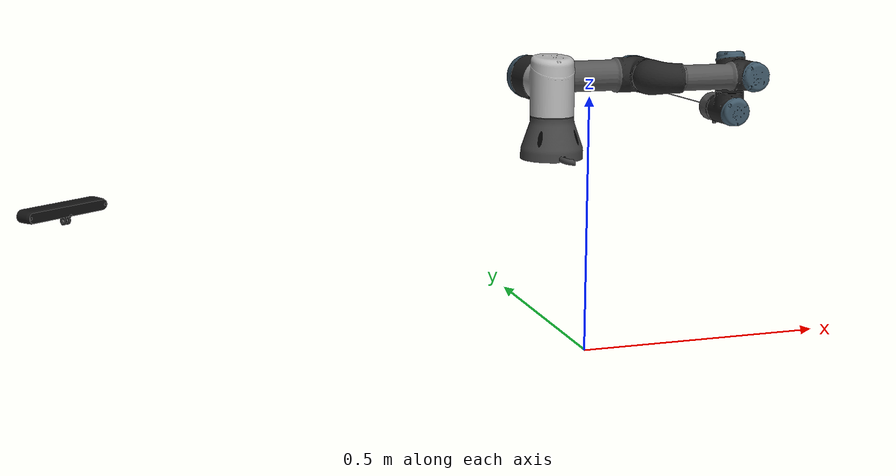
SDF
<sdf version='1.7'>
  <model name='ur'>
    <joint name='base_joint' type='fixed'>
      <pose relative_to='__model__'>0 0.2 0.35 0 -0 0</pose>
      <parent>world</parent>
      <child>base_link</child>
    </joint>
    <link name='base_link'>
      <pose relative_to='base_joint'>0 0 0 0 -0 0</pose>
      <inertial>
        <pose>-0.009895 -0.000926 -0.005219 0 -0 0</pose>
        <mass>2.2197</mass>
        <inertia>
          <ixx>0.00362099</ixx>
          <ixy>-0.00018523</ixy>
          <ixz>-0.0010435</ixz>
          <iyy>0.00558622</iyy>
          <iyz>-9.76754e-05</iyz>
          <izz>0.00762497</izz>
        </inertia>
      </inertial>
      <collision name='base_link_inertia_collision'>
        <pose>0 0 0 0 0 -0</pose>
        <geometry>
          <mesh>
            <scale>1 1 1</scale>
            <uri>file:///home/alex/tese_ws/install/ur_description/share/ur_description/meshes/ur3/collision/base.stl</uri>
          </mesh>
        </geometry>
      </collision>
      <collision name='base_link_fixed_joint_lump__camera_link_collision_1'>
        <pose>-0.97 0.2 -0.05 0 -0 2.2</pose>
        <geometry>
          <mesh>
            <scale>1 1 1</scale>
            <uri>file:///home/alex/tese_ws/install/sim/share/sim/meshes/kinetic.dae</uri>
          </mesh>
        </geometry>
        <surface>
          <contact>
            <ode/>
          </contact>
          <friction>
            <ode/>
          </friction>
        </surface>
      </collision>
      <visual name='base_link_inertia_visual'>
        <pose>0 0 0 0 0 -0</pose>
        <geometry>
          <mesh>
            <scale>1 1 1</scale>
            <uri>file:///home/alex/tese_ws/install/ur_description/share/ur_description/meshes/ur3/visual/base.dae</uri>
          </mesh>
        </geometry>
      </visual>
      <visual name='base_link_fixed_joint_lump__camera_link_visual_1'>
        <pose>-0.97 0.0 -0.05 0 -0 2.2</pose>
        <geometry>
          <mesh>
            <scale>1 1 1</scale>
            <uri>file:///home/alex/tese_ws/install/sim/share/sim/meshes/kinetic.stl</uri>
          </mesh>
        </geometry>
        <material>
	    <ambient>0.02 0.02 0.02 1</ambient>
	    <diffuse>0.08 0.08 0.08 1</diffuse>
	    <specular>0.1 0.1 0.1 1</specular>
	    <emissive>0 0 0 1</emissive>
	</material>

      </visual>
	<sensor name='rgbd_camera' type='rgbd_camera'>
	  <always_on>1</always_on>
	  <update_rate>30</update_rate>
	  <visualize>1</visualize>
	  <camera>
	    <horizontal_fov>0.6</horizontal_fov>  <!-- 55° - tighter FOV, better depth -->
	    <image>
	      <format>R8G8B8</format>
	      <width>1280</width>   <!-- RealSense D435 resolution -->
	      <height>720</height>
	    </image>
	    <clip>
	      <near>0.2</near>
	      <far>3.5</far>  <!-- Reduced - you don't need 8m -->
	    </clip>
	  </camera>
	   <pose>-0.97 0.0 -0.05 0 -0 2.2</pose>
	  <frame_name>camera_optical_link</frame_name>
	</sensor>
    </link>
    <joint name='shoulder_pan_joint' type='revolute'>
      <pose relative_to='base_link'>0 0 0.1519 0 -0 3.14159</pose>
      <parent>base_link</parent>
      <child>shoulder_link</child>
      <axis>
        <xyz>0 0 1</xyz>
        <limit>
          <lower>-6.28319</lower>
          <upper>6.28319</upper>
          <effort>56</effort>
          <velocity>3.14159</velocity>
        </limit>
        <dynamics>
          <damping>0</damping>
          <friction>0</friction>
          <spring_reference>0</spring_reference>
          <spring_stiffness>0</spring_stiffness>
        </dynamics>
      </axis>
    </joint>
    <link name='shoulder_link'>
      <pose relative_to='shoulder_pan_joint'>0 0 0 0 -0 0</pose>
      <inertial>
        <pose>0 0 -0.02 0 -0 0</pose>
        <mass>2</mass>
        <inertia>
          <ixx>0.00809317</ixx>
          <ixy>0</ixy>
          <ixz>0</ixz>
          <iyy>0.00809317</iyy>
          <iyz>0</iyz>
          <izz>0.005625</izz>
        </inertia>
      </inertial>
      <collision name='shoulder_link_collision'>
        <pose>0 0 0 0 -0 3.14159</pose>
        <geometry>
          <mesh>
            <scale>1 1 1</scale>
            <uri>file:///home/alex/tese_ws/install/ur_description/share/ur_description/meshes/ur3/collision/shoulder.stl</uri>
          </mesh>
        </geometry>
      </collision>
      <visual name='shoulder_link_visual'>
        <pose>0 0 0 0 -0 3.14159</pose>
        <geometry>
          <mesh>
            <scale>1 1 1</scale>
            <uri>file:///home/alex/tese_ws/install/ur_description/share/ur_description/meshes/ur3/visual/shoulder.dae</uri>
          </mesh>
        </geometry>
      </visual>
    </link>
    <joint name='shoulder_lift_joint' type='revolute'>
      <pose relative_to='shoulder_link'>0 0 0 1.5708 -0 0</pose>
      <parent>shoulder_link</parent>
      <child>upper_arm_link</child>
      <axis>
        <xyz>0 0 1</xyz>
        <limit>
          <lower>-6.28319</lower>
          <upper>6.28319</upper>
          <effort>56</effort>
          <velocity>3.14159</velocity>
        </limit>
        <dynamics>
          <damping>0</damping>
          <friction>0</friction>
          <spring_reference>0</spring_reference>
          <spring_stiffness>0</spring_stiffness>
        </dynamics>
      </axis>
    </joint>
    <link name='upper_arm_link'>
      <pose relative_to='shoulder_lift_joint'>0 0 0 0 -0 0</pose>
      <inertial>
        <pose>-0.11365 0 0.1157 0 1.5708 0</pose>
        <mass>3.42</mass>
        <inertia>
          <ixx>0.0217285</ixx>
          <ixy>0</ixy>
          <ixz>0</ixz>
          <iyy>0.0217285</iyy>
          <iyz>0</iyz>
          <izz>0.00961875</izz>
        </inertia>
      </inertial>
      <collision name='upper_arm_link_collision'>
        <pose>0 0 0.1198 1.5708 0 -1.5708</pose>
        <geometry>
          <mesh>
            <scale>1 1 1</scale>
            <uri>file:///home/alex/tese_ws/install/ur_description/share/ur_description/meshes/ur3/collision/upperarm.stl</uri>
          </mesh>
        </geometry>
      </collision>
      <visual name='upper_arm_link_visual'>
        <pose>0 0 0.1198 1.5708 0 -1.5708</pose>
        <geometry>
          <mesh>
            <scale>1 1 1</scale>
            <uri>file:///home/alex/tese_ws/install/ur_description/share/ur_description/meshes/ur3/visual/upperarm.dae</uri>
          </mesh>
        </geometry>
      </visual>
    </link>
    <joint name='elbow_joint' type='revolute'>
      <pose relative_to='upper_arm_link'>-0.24365 0 0 0 -0 0</pose>
      <parent>upper_arm_link</parent>
      <child>forearm_link</child>
      <axis>
        <xyz>0 0 1</xyz>
        <limit>
          <lower>-3.14159</lower>
          <upper>3.14159</upper>
          <effort>28</effort>
          <velocity>3.14159</velocity>
        </limit>
        <dynamics>
          <damping>0</damping>
          <friction>0</friction>
          <spring_reference>0</spring_reference>
          <spring_stiffness>0</spring_stiffness>
        </dynamics>
      </axis>
    </joint>
    <link name='forearm_link'>
      <pose relative_to='elbow_joint'>0 0 0 0 -0 0</pose>
      <inertial>
        <pose>-0.16325 0 0.0238 0 1.5708 0</pose>
        <mass>1.26</mass>
        <inertia>
          <ixx>0.00654681</ixx>
          <ixy>0</ixy>
          <ixz>0</ixz>
          <iyy>0.00654681</iyy>
          <iyz>0</iyz>
          <izz>0.00354375</izz>
        </inertia>
      </inertial>
      <collision name='forearm_link_collision'>
        <pose>0 0 0.0275 1.5708 0 -1.5708</pose>
        <geometry>
          <mesh>
            <scale>1 1 1</scale>
            <uri>file:///home/alex/tese_ws/install/ur_description/share/ur_description/meshes/ur3/collision/forearm.stl</uri>
          </mesh>
        </geometry>
      </collision>
      <visual name='forearm_link_visual'>
        <pose>0 0 0.0275 1.5708 0 -1.5708</pose>
        <geometry>
          <mesh>
            <scale>1 1 1</scale>
            <uri>file:///home/alex/tese_ws/install/ur_description/share/ur_description/meshes/ur3/visual/forearm.dae</uri>
          </mesh>
        </geometry>
      </visual>
    </link>
    <joint name='wrist_1_joint' type='revolute'>
      <pose relative_to='forearm_link'>-0.21325 0 0.11235 0 -0 0</pose>
      <parent>forearm_link</parent>
      <child>wrist_1_link</child>
      <axis>
        <xyz>0 0 1</xyz>
        <limit>
          <lower>-6.28319</lower>
          <upper>6.28319</upper>
          <effort>12</effort>
          <velocity>6.28319</velocity>
        </limit>
        <dynamics>
          <damping>0</damping>
          <friction>0</friction>
          <spring_reference>0</spring_reference>
          <spring_stiffness>0</spring_stiffness>
        </dynamics>
      </axis>
    </joint>
    <link name='wrist_1_link'>
      <pose relative_to='wrist_1_joint'>0 0 0 0 -0 0</pose>
      <inertial>
        <pose>0 -0.01 0 0 -0 0</pose>
        <mass>0.8</mass>
        <inertia>
          <ixx>0.00161064</ixx>
          <ixy>0</ixy>
          <ixz>0</ixz>
          <iyy>0.00161064</iyy>
          <iyz>0</iyz>
          <izz>0.00225</izz>
        </inertia>
      </inertial>
      <collision name='wrist_1_link_collision'>
        <pose>0 0 -0.085 1.5708 -0 0</pose>
        <geometry>
          <mesh>
            <scale>1 1 1</scale>
            <uri>file:///home/alex/tese_ws/install/ur_description/share/ur_description/meshes/ur3/collision/wrist1.stl</uri>
          </mesh>
        </geometry>
      </collision>
      <visual name='wrist_1_link_visual'>
        <pose>0 0 -0.085 1.5708 -0 0</pose>
        <geometry>
          <mesh>
            <scale>1 1 1</scale>
            <uri>file:///home/alex/tese_ws/install/ur_description/share/ur_description/meshes/ur3/visual/wrist1.dae</uri>
          </mesh>
        </geometry>
      </visual>
    </link>
    <joint name='wrist_2_joint' type='revolute'>
      <pose relative_to='wrist_1_link'>0 -0.08535 -0 1.5708 -0 0</pose>
      <parent>wrist_1_link</parent>
      <child>wrist_2_link</child>
      <axis>
        <xyz>0 0 1</xyz>
        <limit>
          <lower>-6.28319</lower>
          <upper>6.28319</upper>
          <effort>12</effort>
          <velocity>6.28319</velocity>
        </limit>
        <dynamics>
          <damping>0</damping>
          <friction>0</friction>
          <spring_reference>0</spring_reference>
          <spring_stiffness>0</spring_stiffness>
        </dynamics>
      </axis>
    </joint>
    <link name='wrist_2_link'>
      <pose relative_to='wrist_2_joint'>0 0 0 0 -0 0</pose>
      <inertial>
        <pose>0 0.01 0 0 -0 0</pose>
        <mass>0.8</mass>
        <inertia>
          <ixx>0.00157217</ixx>
          <ixy>0</ixy>
          <ixz>0</ixz>
          <iyy>0.00157217</iyy>
          <iyz>0</iyz>
          <izz>0.00225</izz>
        </inertia>
      </inertial>
      <collision name='wrist_2_link_collision'>
        <pose>0 0 -0.083 0 -0 0</pose>
        <geometry>
          <mesh>
            <scale>1 1 1</scale>
            <uri>file:///home/alex/tese_ws/install/ur_description/share/ur_description/meshes/ur3/collision/wrist2.stl</uri>
          </mesh>
        </geometry>
      </collision>
      <visual name='wrist_2_link_visual'>
        <pose>0 0 -0.083 0 -0 0</pose>
        <geometry>
          <mesh>
            <scale>1 1 1</scale>
            <uri>file:///home/alex/tese_ws/install/ur_description/share/ur_description/meshes/ur3/visual/wrist2.dae</uri>
          </mesh>
        </geometry>
      </visual>
    </link>
    <joint name='wrist_3_joint' type='revolute'>
      <pose relative_to='wrist_2_link'>0 0.0819 -0 -1.5708 0 -0</pose>
      <parent>wrist_2_link</parent>
      <child>wrist_3_link</child>
      <axis>
        <xyz>0 0 1</xyz>
        <limit>
          <effort>12</effort>
          <velocity>6.28319</velocity>
          <lower>-1e+16</lower>
          <upper>1e+16</upper>
        </limit>
        <dynamics>
          <damping>0</damping>
          <friction>0</friction>
          <spring_reference>0</spring_reference>
          <spring_stiffness>0</spring_stiffness>
        </dynamics>
      </axis>
    </joint>
    <link name='wrist_3_link'>
      <pose relative_to='wrist_3_joint'>0 0 0 0 -0 0</pose>
      <inertial>
        <pose>0 0 -0.02 0 -0 0</pose>
        <mass>0.35</mass>
        <inertia>
          <ixx>0.000136267</ixx>
          <ixy>0</ixy>
          <ixz>0</ixz>
          <iyy>0.000136267</iyy>
          <iyz>0</iyz>
          <izz>0.0001792</izz>
        </inertia>
      </inertial>
      <collision name='wrist_3_link_collision'>
        <pose>0 -0.00255 -0.082 1.5708 -0 0</pose>
        <geometry>
          <mesh>
            <scale>1 1 1</scale>
            <uri>file:///home/alex/tese_ws/install/ur_description/share/ur_description/meshes/ur3/collision/wrist3.stl</uri>
          </mesh>
        </geometry>
      </collision>
      <visual name='wrist_3_link_visual'>
        <pose>0 -0.00255 -0.082 1.5708 -0 0</pose>
        <geometry>
          <mesh>
            <scale>1 1 1</scale>
            <uri>file:///home/alex/tese_ws/install/ur_description/share/ur_description/meshes/ur3/visual/wrist3.dae</uri>
          </mesh>
        </geometry>
      </visual>
      <visual name='wrist_3_link_fixed_joint_lump__ee_beam_vis_visual_1'>
        <pose>-0 0 0.325 -0 -0 0</pose>
        <geometry>
          <cylinder>
            <length>0.65</length>
            <radius>0.001</radius>
          </cylinder>
        </geometry>
      </visual>
    </link>
    <static>0</static>
    <plugin name='ign_ros2_control::IgnitionROS2ControlPlugin' filename='libign_ros2_control-system.so'>
      <parameters>/home/alex/tese_ws/install/sim/share/sim/config/ur3_controllers.yaml</parameters>
      <controller_manager_node_name>controller_manager</controller_manager_node_name>
    </plugin>
  </model>
</sdf>
